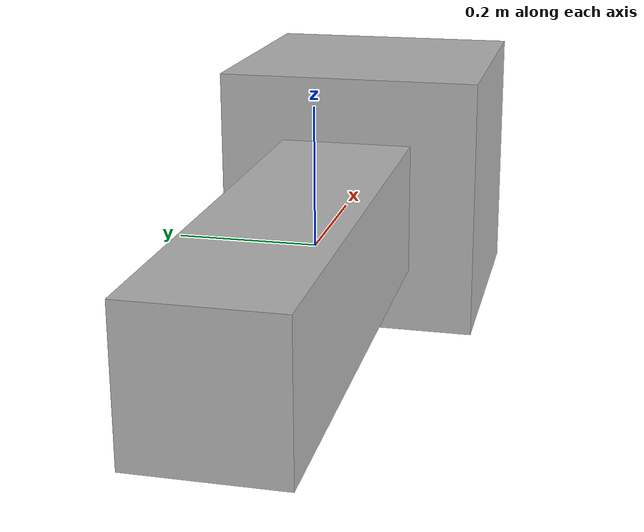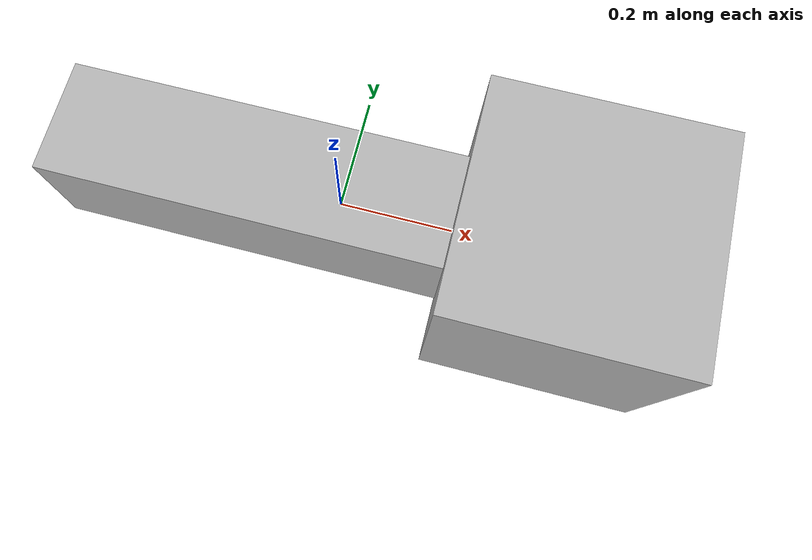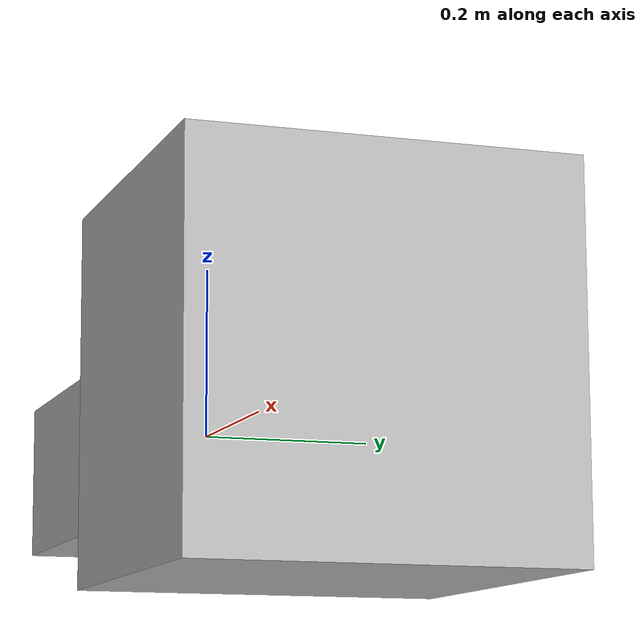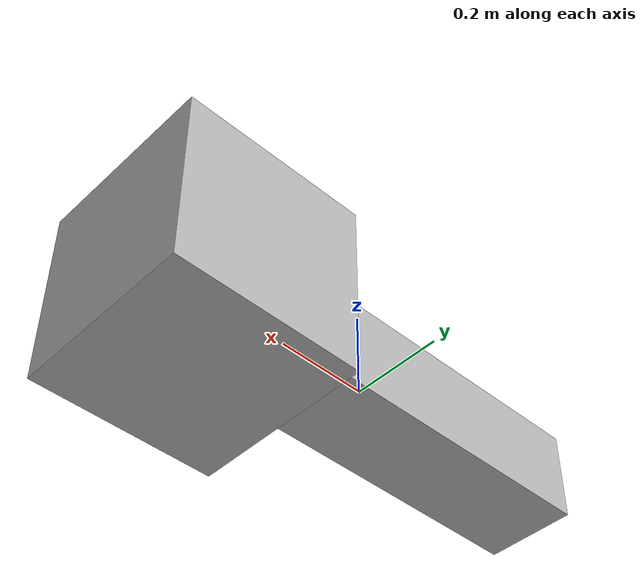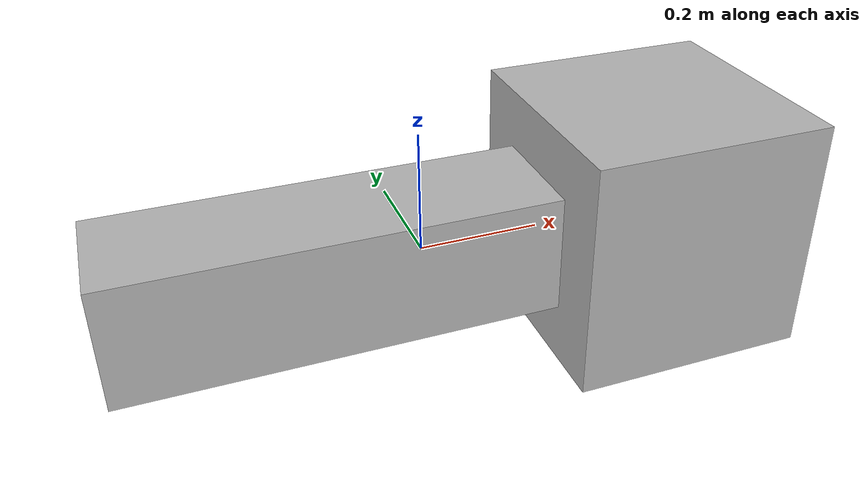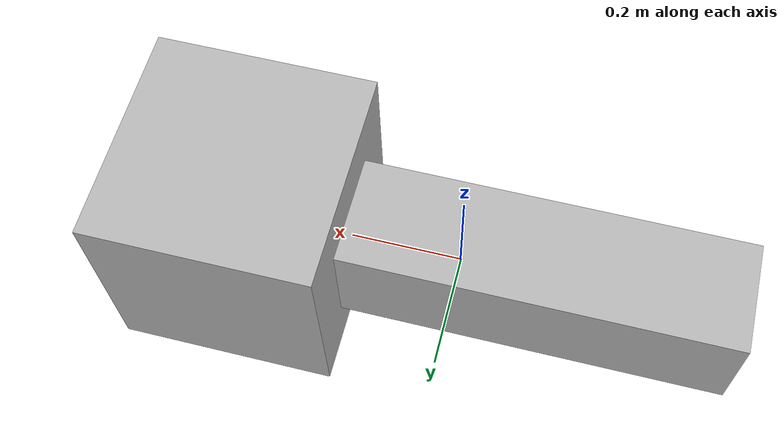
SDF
<?xml version="1.0"?>
<sdf version="1.6">
  <model name="post">
    <static>true</static>
    <pose>0 0 0 0 0 0</pose>
    <link name="base_link">
      <visual name="visual_1">
        <geometry>
          <box>
            <size>1 0.2 0.2</size>
          </box>
        </geometry>
      </visual>
      <visual name="visual_2">
        <pose>0.4 0 0 0 0 0</pose>
        <geometry>
          <box>
            <size>0.4 0.4 0.4</size>
          </box>
        </geometry>
      </visual>
      <collision name="collision">
        <pose>0 0 0.5 0 0 0</pose>
        <geometry>
          <box>
            <size>1 0.2 1</size>
          </box>
        </geometry>
      </collision>
    </link>
  </model>
</sdf>
